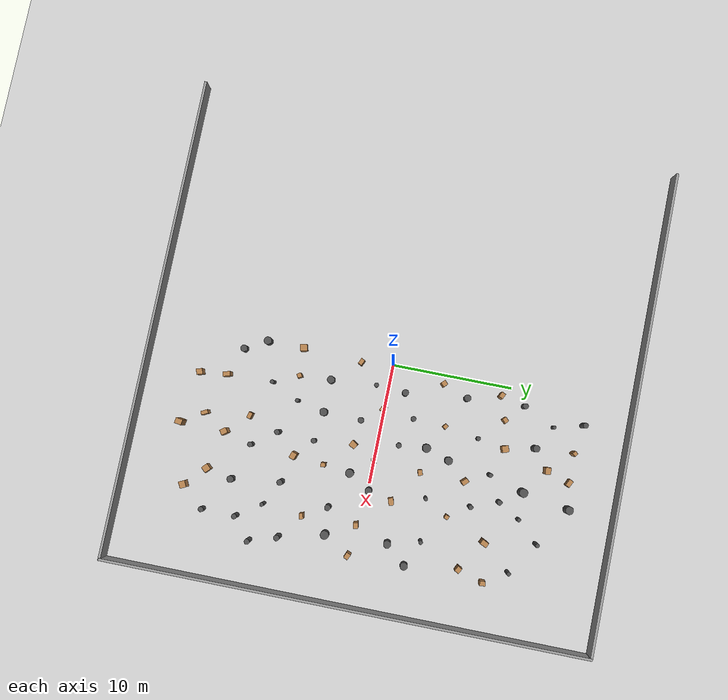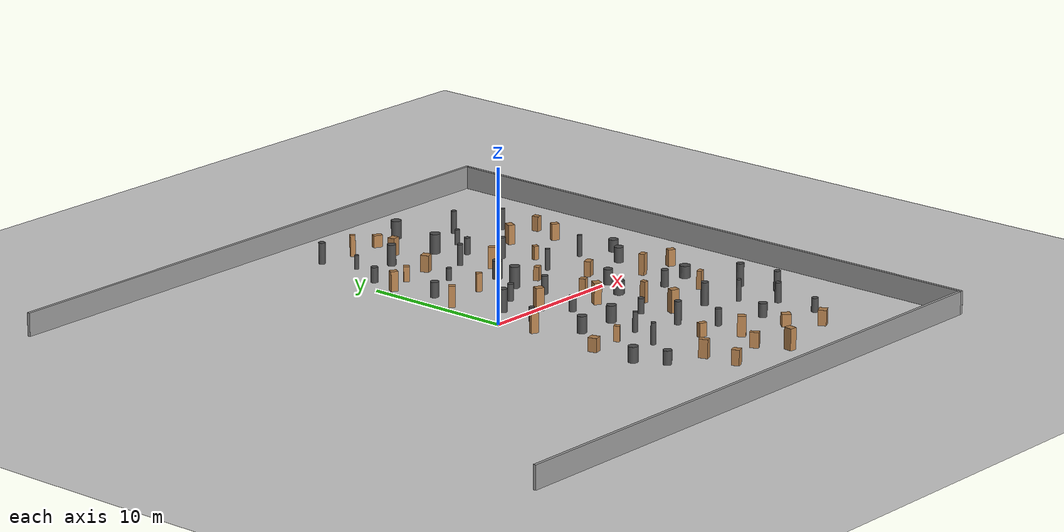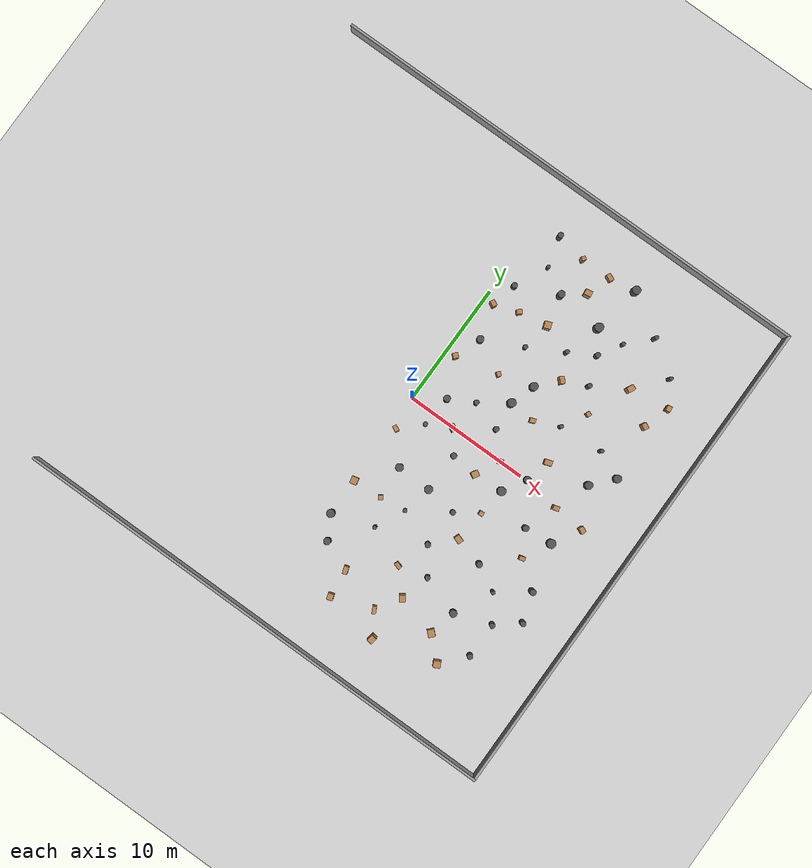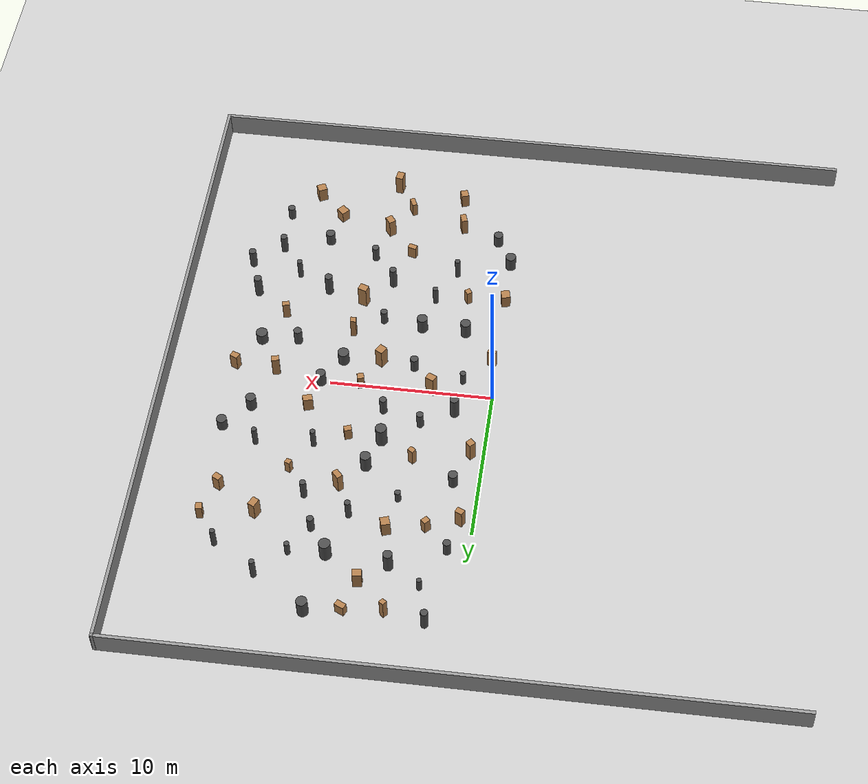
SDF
<sdf version="1.6">
 <world name="default">
  <model name="ground_plane">
   <static>1</static>
   <link name="link">
    <collision name="collision">
     <geometry><plane><normal>0 0 1</normal><size>80 80</size></plane></geometry>
     <surface><friction><ode><mu>0.5</mu><mu2>0.5</mu2></ode></friction></surface>
    </collision>
    <visual name="visual">
     <cast_shadows>0</cast_shadows>
     <geometry><plane><normal>0 0 1</normal><size>80 80</size></plane></geometry>
     <material>
      <script><uri>file://media/materials/scripts/gazebo.material</uri><name>Gazebo/Grey</name></script>
     </material>
    </visual>
   </link>
  </model>
  <model name="wall_north">
   <static>1</static>
   <link name="link">
    <collision name="collision"><geometry><box><size>40.4 0.2 1.5</size></box></geometry></collision>
    <visual name="visual">
     <geometry><box><size>40.4 0.2 1.5</size></box></geometry>
     <material>
      <script><uri>file://media/materials/scripts/gazebo.material</uri><name>Gazebo/Grey</name></script>
     </material>
    </visual>
   </link>
   <pose>0 20.1 0.75 0 0 0</pose>
  </model>
  <model name="wall_south">
   <static>1</static>
   <link name="link">
    <collision name="collision"><geometry><box><size>40.4 0.2 1.5</size></box></geometry></collision>
    <visual name="visual">
     <geometry><box><size>40.4 0.2 1.5</size></box></geometry>
     <material>
      <script><uri>file://media/materials/scripts/gazebo.material</uri><name>Gazebo/Grey</name></script>
     </material>
    </visual>
   </link>
   <pose>0 -20.1 0.75 0 0 0</pose>
  </model>
  <model name="wall_east">
   <static>1</static>
   <link name="link">
    <collision name="collision"><geometry><box><size>0.2 40.4 1.5</size></box></geometry></collision>
    <visual name="visual">
     <geometry><box><size>0.2 40.4 1.5</size></box></geometry>
     <material>
      <script><uri>file://media/materials/scripts/gazebo.material</uri><name>Gazebo/Grey</name></script>
     </material>
    </visual>
   </link>
   <pose>20.1 0 0.75 0 0 0</pose>
  </model>
  <model name="obs_006">
   <static>1</static>
   <link name="link">
    <collision name="collision">
     <geometry><cylinder><radius>0.16</radius><length>1.4</length></cylinder></geometry>
    </collision>
    <visual name="visual">
     <geometry><cylinder><radius>0.16</radius><length>1.4</length></cylinder></geometry>
     <material>
      <script><uri>file://media/materials/scripts/gazebo.material</uri><name>Gazebo/DarkGrey</name></script>
     </material>
    </visual>
   </link>
   <pose>10.24 4.73 0.70 0 0 0</pose>
  </model>
  <model name="obs_007">
   <static>1</static>
   <link name="link">
    <collision name="collision"><geometry><box><size>0.31 0.45 1.2</size></box></geometry></collision>
    <visual name="visual">
     <geometry><box><size>0.31 0.45 1.2</size></box></geometry>
     <material>
      <script><uri>file://media/materials/scripts/gazebo.material</uri><name>Gazebo/Wood</name></script>
     </material>
    </visual>
   </link>
   <pose>13.59 -4.91 0.60 0 0 -1.3</pose>
  </model>
  <model name="obs_009">
   <static>1</static>
   <link name="link">
    <collision name="collision"><geometry><box><size>0.5 0.46 1.0</size></box></geometry></collision>
    <visual name="visual">
     <geometry><box><size>0.5 0.46 1.0</size></box></geometry>
     <material>
      <script><uri>file://media/materials/scripts/gazebo.material</uri><name>Gazebo/Wood</name></script>
     </material>
    </visual>
   </link>
   <pose>3.71 -15.54 0.50 0 0 -1.25</pose>
  </model>
  <model name="obs_011">
   <static>1</static>
   <link name="link">
    <collision name="collision">
     <geometry><cylinder><radius>0.21</radius><length>1.1</length></cylinder></geometry>
    </collision>
    <visual name="visual">
     <geometry><cylinder><radius>0.21</radius><length>1.1</length></cylinder></geometry>
     <material>
      <script><uri>file://media/materials/scripts/gazebo.material</uri><name>Gazebo/DarkGrey</name></script>
     </material>
    </visual>
   </link>
   <pose>4.09 2.51 0.55 0 0 0</pose>
  </model>
  <model name="obs_013">
   <static>1</static>
   <link name="link">
    <collision name="collision"><geometry><box><size>0.54 0.57 0.8</size></box></geometry></collision>
    <visual name="visual">
     <geometry><box><size>0.54 0.57 0.8</size></box></geometry>
     <material>
      <script><uri>file://media/materials/scripts/gazebo.material</uri><name>Gazebo/Wood</name></script>
     </material>
    </visual>
   </link>
   <pose>11.36 -13.36 0.40 0 0 -2.31</pose>
  </model>
  <model name="obs_017">
   <static>1</static>
   <link name="link">
    <collision name="collision">
     <geometry><cylinder><radius>0.32</radius><length>1.2</length></cylinder></geometry>
    </collision>
    <visual name="visual">
     <geometry><cylinder><radius>0.32</radius><length>1.2</length></cylinder></geometry>
     <material>
      <script><uri>file://media/materials/scripts/gazebo.material</uri><name>Gazebo/DarkGrey</name></script>
     </material>
    </visual>
   </link>
   <pose>6.87 5.98 0.60 0 0 0</pose>
  </model>
  <model name="obs_018">
   <static>1</static>
   <link name="link">
    <collision name="collision">
     <geometry><cylinder><radius>0.16</radius><length>1.4</length></cylinder></geometry>
    </collision>
    <visual name="visual">
     <geometry><cylinder><radius>0.16</radius><length>1.4</length></cylinder></geometry>
     <material>
      <script><uri>file://media/materials/scripts/gazebo.material</uri><name>Gazebo/DarkGrey</name></script>
     </material>
    </visual>
   </link>
   <pose>13.74 5.00 0.70 0 0 0</pose>
  </model>
  <model name="obs_020">
   <static>1</static>
   <link name="link">
    <collision name="collision"><geometry><box><size>0.54 0.55 1.1</size></box></geometry></collision>
    <visual name="visual">
     <geometry><box><size>0.54 0.55 1.1</size></box></geometry>
     <material>
      <script><uri>file://media/materials/scripts/gazebo.material</uri><name>Gazebo/Wood</name></script>
     </material>
    </visual>
   </link>
   <pose>5.03 10.34 0.55 0 0 -2.81</pose>
  </model>
  <model name="obs_021">
   <static>1</static>
   <link name="link">
    <collision name="collision">
     <geometry><cylinder><radius>0.33</radius><length>1.2</length></cylinder></geometry>
    </collision>
    <visual name="visual">
     <geometry><cylinder><radius>0.33</radius><length>1.2</length></cylinder></geometry>
     <material>
      <script><uri>file://media/materials/scripts/gazebo.material</uri><name>Gazebo/DarkGrey</name></script>
     </material>
    </visual>
   </link>
   <pose>8.89 16.34 0.60 0 0 0</pose>
  </model>
  <model name="obs_026">
   <static>1</static>
   <link name="link">
    <collision name="collision">
     <geometry><cylinder><radius>0.15</radius><length>0.9</length></cylinder></geometry>
    </collision>
    <visual name="visual">
     <geometry><cylinder><radius>0.15</radius><length>0.9</length></cylinder></geometry>
     <material>
      <script><uri>file://media/materials/scripts/gazebo.material</uri><name>Gazebo/DarkGrey</name></script>
     </material>
    </visual>
   </link>
   <pose>2.52 13.98 0.45 0 0 0</pose>
  </model>
  <model name="obs_027">
   <static>1</static>
   <link name="link">
    <collision name="collision">
     <geometry><cylinder><radius>0.23</radius><length>1.0</length></cylinder></geometry>
    </collision>
    <visual name="visual">
     <geometry><cylinder><radius>0.23</radius><length>1.0</length></cylinder></geometry>
     <material>
      <script><uri>file://media/materials/scripts/gazebo.material</uri><name>Gazebo/DarkGrey</name></script>
     </material>
    </visual>
   </link>
   <pose>1.27 11.33 0.50 0 0 0</pose>
  </model>
  <model name="obs_028">
   <static>1</static>
   <link name="link">
    <collision name="collision"><geometry><box><size>0.54 0.57 0.9</size></box></geometry></collision>
    <visual name="visual">
     <geometry><box><size>0.54 0.57 0.9</size></box></geometry>
     <material>
      <script><uri>file://media/materials/scripts/gazebo.material</uri><name>Gazebo/Wood</name></script>
     </material>
    </visual>
   </link>
   <pose>0.09 -7.54 0.45 0 0 0.22</pose>
  </model>
  <model name="obs_031">
   <static>1</static>
   <link name="link">
    <collision name="collision">
     <geometry><cylinder><radius>0.17</radius><length>1.5</length></cylinder></geometry>
    </collision>
    <visual name="visual">
     <geometry><cylinder><radius>0.17</radius><length>1.5</length></cylinder></geometry>
     <material>
      <script><uri>file://media/materials/scripts/gazebo.material</uri><name>Gazebo/DarkGrey</name></script>
     </material>
    </visual>
   </link>
   <pose>12.13 14.25 0.75 0 0 0</pose>
  </model>
  <model name="obs_032">
   <static>1</static>
   <link name="link">
    <collision name="collision"><geometry><box><size>0.42 0.42 1.4</size></box></geometry></collision>
    <visual name="visual">
     <geometry><box><size>0.42 0.42 1.4</size></box></geometry>
     <material>
      <script><uri>file://media/materials/scripts/gazebo.material</uri><name>Gazebo/Wood</name></script>
     </material>
    </visual>
   </link>
   <pose>0.77 4.42 0.70 0 0 0.78</pose>
  </model>
  <model name="obs_033">
   <static>1</static>
   <link name="link">
    <collision name="collision"><geometry><box><size>0.4 0.41 1.0</size></box></geometry></collision>
    <visual name="visual">
     <geometry><box><size>0.4 0.41 1.0</size></box></geometry>
     <material>
      <script><uri>file://media/materials/scripts/gazebo.material</uri><name>Gazebo/Wood</name></script>
     </material>
    </visual>
   </link>
   <pose>8.11 -0.01 0.50 0 0 -1.3</pose>
  </model>
  <model name="obs_034">
   <static>1</static>
   <link name="link">
    <collision name="collision">
     <geometry><cylinder><radius>0.16</radius><length>1.4</length></cylinder></geometry>
    </collision>
    <visual name="visual">
     <geometry><cylinder><radius>0.16</radius><length>1.4</length></cylinder></geometry>
     <material>
      <script><uri>file://media/materials/scripts/gazebo.material</uri><name>Gazebo/DarkGrey</name></script>
     </material>
    </visual>
   </link>
   <pose>14.80 12.41 0.70 0 0 0</pose>
  </model>
  <model name="obs_035">
   <static>1</static>
   <link name="link">
    <collision name="collision"><geometry><box><size>0.4 0.49 1.1</size></box></geometry></collision>
    <visual name="visual">
     <geometry><box><size>0.4 0.49 1.1</size></box></geometry>
     <material>
      <script><uri>file://media/materials/scripts/gazebo.material</uri><name>Gazebo/Wood</name></script>
     </material>
    </visual>
   </link>
   <pose>15.31 8.42 0.55 0 0 -2.05</pose>
  </model>
  <model name="obs_038">
   <static>1</static>
   <link name="link">
    <collision name="collision"><geometry><box><size>0.34 0.33 0.9</size></box></geometry></collision>
    <visual name="visual">
     <geometry><box><size>0.34 0.33 0.9</size></box></geometry>
     <material>
      <script><uri>file://media/materials/scripts/gazebo.material</uri><name>Gazebo/Wood</name></script>
     </material>
    </visual>
   </link>
   <pose>11.39 6.71 0.45 0 0 2.77</pose>
  </model>
  <model name="obs_040">
   <static>1</static>
   <link name="link">
    <collision name="collision">
     <geometry><cylinder><radius>0.16</radius><length>1.3</length></cylinder></geometry>
    </collision>
    <visual name="visual">
     <geometry><cylinder><radius>0.16</radius><length>1.3</length></cylinder></geometry>
     <material>
      <script><uri>file://media/materials/scripts/gazebo.material</uri><name>Gazebo/DarkGrey</name></script>
     </material>
    </visual>
   </link>
   <pose>4.47 -7.13 0.65 0 0 0</pose>
  </model>
  <model name="obs_043">
   <static>1</static>
   <link name="link">
    <collision name="collision">
     <geometry><cylinder><radius>0.35</radius><length>1.3</length></cylinder></geometry>
    </collision>
    <visual name="visual">
     <geometry><cylinder><radius>0.35</radius><length>1.3</length></cylinder></geometry>
     <material>
      <script><uri>file://media/materials/scripts/gazebo.material</uri><name>Gazebo/DarkGrey</name></script>
     </material>
    </visual>
   </link>
   <pose>8.23 12.42 0.65 0 0 0</pose>
  </model>
  <model name="obs_045">
   <static>1</static>
   <link name="link">
    <collision name="collision">
     <geometry><cylinder><radius>0.24</radius><length>1.0</length></cylinder></geometry>
    </collision>
    <visual name="visual">
     <geometry><cylinder><radius>0.24</radius><length>1.0</length></cylinder></geometry>
     <material>
      <script><uri>file://media/materials/scripts/gazebo.material</uri><name>Gazebo/DarkGrey</name></script>
     </material>
    </visual>
   </link>
   <pose>5.04 -1.71 0.50 0 0 0</pose>
  </model>
  <model name="obs_047">
   <static>1</static>
   <link name="link">
    <collision name="collision"><geometry><box><size>0.55 0.45 1.2</size></box></geometry></collision>
    <visual name="visual">
     <geometry><box><size>0.55 0.45 1.2</size></box></geometry>
     <material>
      <script><uri>file://media/materials/scripts/gazebo.material</uri><name>Gazebo/Wood</name></script>
     </material>
    </visual>
   </link>
   <pose>6.09 14.07 0.60 0 0 -3.03</pose>
  </model>
  <model name="obs_049">
   <static>1</static>
   <link name="link">
    <collision name="collision"><geometry><box><size>0.47 0.37 1.4</size></box></geometry></collision>
    <visual name="visual">
     <geometry><box><size>0.47 0.37 1.4</size></box></geometry>
     <material>
      <script><uri>file://media/materials/scripts/gazebo.material</uri><name>Gazebo/Wood</name></script>
     </material>
    </visual>
   </link>
   <pose>13.44 -0.42 0.70 0 0 0.25</pose>
  </model>
  <model name="obs_050">
   <static>1</static>
   <link name="link">
    <collision name="collision">
     <geometry><cylinder><radius>0.28</radius><length>0.9</length></cylinder></geometry>
    </collision>
    <visual name="visual">
     <geometry><cylinder><radius>0.28</radius><length>0.9</length></cylinder></geometry>
     <material>
      <script><uri>file://media/materials/scripts/gazebo.material</uri><name>Gazebo/DarkGrey</name></script>
     </material>
    </visual>
   </link>
   <pose>11.83 -11.22 0.45 0 0 0</pose>
  </model>
  <model name="obs_051">
   <static>1</static>
   <link name="link">
    <collision name="collision">
     <geometry><cylinder><radius>0.24</radius><length>1.5</length></cylinder></geometry>
    </collision>
    <visual name="visual">
     <geometry><cylinder><radius>0.24</radius><length>1.5</length></cylinder></geometry>
     <material>
      <script><uri>file://media/materials/scripts/gazebo.material</uri><name>Gazebo/DarkGrey</name></script>
     </material>
    </visual>
   </link>
   <pose>15.64 -6.47 0.75 0 0 0</pose>
  </model>
  <model name="obs_053">
   <static>1</static>
   <link name="link">
    <collision name="collision">
     <geometry><cylinder><radius>0.28</radius><length>1.4</length></cylinder></geometry>
    </collision>
    <visual name="visual">
     <geometry><cylinder><radius>0.28</radius><length>1.4</length></cylinder></geometry>
     <material>
      <script><uri>file://media/materials/scripts/gazebo.material</uri><name>Gazebo/DarkGrey</name></script>
     </material>
    </visual>
   </link>
   <pose>4.50 12.78 0.70 0 0 0</pose>
  </model>
  <model name="obs_054">
   <static>1</static>
   <link name="link">
    <collision name="collision"><geometry><box><size>0.43 0.58 1.3</size></box></geometry></collision>
    <visual name="visual">
     <geometry><box><size>0.43 0.58 1.3</size></box></geometry>
     <material>
      <script><uri>file://media/materials/scripts/gazebo.material</uri><name>Gazebo/Wood</name></script>
     </material>
    </visual>
   </link>
   <pose>12.82 10.07 0.65 0 0 -0.43</pose>
  </model>
  <model name="obs_055">
   <static>1</static>
   <link name="link">
    <collision name="collision">
     <geometry><cylinder><radius>0.35</radius><length>0.8</length></cylinder></geometry>
    </collision>
    <visual name="visual">
     <geometry><cylinder><radius>0.35</radius><length>0.8</length></cylinder></geometry>
     <material>
      <script><uri>file://media/materials/scripts/gazebo.material</uri><name>Gazebo/DarkGrey</name></script>
     </material>
    </visual>
   </link>
   <pose>14.75 -2.77 0.40 0 0 0</pose>
  </model>
  <model name="obs_056">
   <static>1</static>
   <link name="link">
    <collision name="collision">
     <geometry><cylinder><radius>0.24</radius><length>1.5</length></cylinder></geometry>
    </collision>
    <visual name="visual">
     <geometry><cylinder><radius>0.24</radius><length>1.5</length></cylinder></geometry>
     <material>
      <script><uri>file://media/materials/scripts/gazebo.material</uri><name>Gazebo/DarkGrey</name></script>
     </material>
    </visual>
   </link>
   <pose>11.25 -7.13 0.75 0 0 0</pose>
  </model>
  <model name="obs_060">
   <static>1</static>
   <link name="link">
    <collision name="collision"><geometry><box><size>0.53 0.33 0.9</size></box></geometry></collision>
    <visual name="visual">
     <geometry><box><size>0.53 0.33 0.9</size></box></geometry>
     <material>
      <script><uri>file://media/materials/scripts/gazebo.material</uri><name>Gazebo/Wood</name></script>
     </material>
    </visual>
   </link>
   <pose>6.44 -10.74 0.45 0 0 -0.26</pose>
  </model>
  <model name="obs_061">
   <static>1</static>
   <link name="link">
    <collision name="collision">
     <geometry><cylinder><radius>0.18</radius><length>0.9</length></cylinder></geometry>
    </collision>
    <visual name="visual">
     <geometry><cylinder><radius>0.18</radius><length>0.9</length></cylinder></geometry>
     <material>
      <script><uri>file://media/materials/scripts/gazebo.material</uri><name>Gazebo/DarkGrey</name></script>
     </material>
    </visual>
   </link>
   <pose>1.94 -1.03 0.45 0 0 0</pose>
  </model>
  <model name="obs_064">
   <static>1</static>
   <link name="link">
    <collision name="collision"><geometry><box><size>0.46 0.56 1.5</size></box></geometry></collision>
    <visual name="visual">
     <geometry><box><size>0.46 0.56 1.5</size></box></geometry>
     <material>
      <script><uri>file://media/materials/scripts/gazebo.material</uri><name>Gazebo/Wood</name></script>
     </material>
    </visual>
   </link>
   <pose>8.93 -6.52 0.75 0 0 -1.9</pose>
  </model>
  <model name="obs_065">
   <static>1</static>
   <link name="link">
    <collision name="collision"><geometry><box><size>0.52 0.56 1.0</size></box></geometry></collision>
    <visual name="visual">
     <geometry><box><size>0.52 0.56 1.0</size></box></geometry>
     <material>
      <script><uri>file://media/materials/scripts/gazebo.material</uri><name>Gazebo/Wood</name></script>
     </material>
    </visual>
   </link>
   <pose>13.01 -14.94 0.50 0 0 -1.1</pose>
  </model>
  <model name="obs_066">
   <static>1</static>
   <link name="link">
    <collision name="collision">
     <geometry><cylinder><radius>0.32</radius><length>1.1</length></cylinder></geometry>
    </collision>
    <visual name="visual">
     <geometry><cylinder><radius>0.32</radius><length>1.1</length></cylinder></geometry>
     <material>
      <script><uri>file://media/materials/scripts/gazebo.material</uri><name>Gazebo/DarkGrey</name></script>
     </material>
    </visual>
   </link>
   <pose>4.98 -4.84 0.55 0 0 0</pose>
  </model>
  <model name="obs_067">
   <static>1</static>
   <link name="link">
    <collision name="collision"><geometry><box><size>0.37 0.59 1.2</size></box></geometry></collision>
    <visual name="visual">
     <geometry><box><size>0.37 0.59 1.2</size></box></geometry>
     <material>
      <script><uri>file://media/materials/scripts/gazebo.material</uri><name>Gazebo/Wood</name></script>
     </material>
    </visual>
   </link>
   <pose>3.47 -13.27 0.60 0 0 -2.82</pose>
  </model>
  <model name="obs_068">
   <static>1</static>
   <link name="link">
    <collision name="collision">
     <geometry><cylinder><radius>0.28</radius><length>0.9</length></cylinder></geometry>
    </collision>
    <visual name="visual">
     <geometry><cylinder><radius>0.28</radius><length>0.9</length></cylinder></geometry>
     <material>
      <script><uri>file://media/materials/scripts/gazebo.material</uri><name>Gazebo/DarkGrey</name></script>
     </material>
    </visual>
   </link>
   <pose>1.11 -12.36 0.45 0 0 0</pose>
  </model>
  <model name="obs_073">
   <static>1</static>
   <link name="link">
    <collision name="collision"><geometry><box><size>0.58 0.31 1.0</size></box></geometry></collision>
    <visual name="visual">
     <geometry><box><size>0.58 0.31 1.0</size></box></geometry>
     <material>
      <script><uri>file://media/materials/scripts/gazebo.material</uri><name>Gazebo/Wood</name></script>
     </material>
    </visual>
   </link>
   <pose>6.91 -14.42 0.50 0 0 2.05</pose>
  </model>
  <model name="obs_074">
   <static>1</static>
   <link name="link">
    <collision name="collision">
     <geometry><cylinder><radius>0.31</radius><length>1.0</length></cylinder></geometry>
    </collision>
    <visual name="visual">
     <geometry><cylinder><radius>0.31</radius><length>1.0</length></cylinder></geometry>
     <material>
      <script><uri>file://media/materials/scripts/gazebo.material</uri><name>Gazebo/DarkGrey</name></script>
     </material>
    </visual>
   </link>
   <pose>14.47 2.38 0.50 0 0 0</pose>
  </model>
  <model name="obs_075">
   <static>1</static>
   <link name="link">
    <collision name="collision">
     <geometry><cylinder><radius>0.34</radius><length>0.9</length></cylinder></geometry>
    </collision>
    <visual name="visual">
     <geometry><cylinder><radius>0.34</radius><length>0.9</length></cylinder></geometry>
     <material>
      <script><uri>file://media/materials/scripts/gazebo.material</uri><name>Gazebo/DarkGrey</name></script>
     </material>
    </visual>
   </link>
   <pose>9.46 -1.76 0.45 0 0 0</pose>
  </model>
  <model name="obs_076">
   <static>1</static>
   <link name="link">
    <collision name="collision">
     <geometry><cylinder><radius>0.16</radius><length>1.0</length></cylinder></geometry>
    </collision>
    <visual name="visual">
     <geometry><cylinder><radius>0.16</radius><length>1.0</length></cylinder></geometry>
     <material>
      <script><uri>file://media/materials/scripts/gazebo.material</uri><name>Gazebo/DarkGrey</name></script>
     </material>
    </visual>
   </link>
   <pose>10.45 12.50 0.50 0 0 0</pose>
  </model>
  <model name="obs_079">
   <static>1</static>
   <link name="link">
    <collision name="collision">
     <geometry><cylinder><radius>0.22</radius><length>0.9</length></cylinder></geometry>
    </collision>
    <visual name="visual">
     <geometry><cylinder><radius>0.22</radius><length>0.9</length></cylinder></geometry>
     <material>
      <script><uri>file://media/materials/scripts/gazebo.material</uri><name>Gazebo/DarkGrey</name></script>
     </material>
    </visual>
   </link>
   <pose>14.68 -13.05 0.45 0 0 0</pose>
  </model>
  <model name="obs_080">
   <static>1</static>
   <link name="link">
    <collision name="collision">
     <geometry><cylinder><radius>0.21</radius><length>1.3</length></cylinder></geometry>
    </collision>
    <visual name="visual">
     <geometry><cylinder><radius>0.21</radius><length>1.3</length></cylinder></geometry>
     <material>
      <script><uri>file://media/materials/scripts/gazebo.material</uri><name>Gazebo/DarkGrey</name></script>
     </material>
    </visual>
   </link>
   <pose>14.66 -10.22 0.65 0 0 0</pose>
  </model>
  <model name="obs_082">
   <static>1</static>
   <link name="link">
    <collision name="collision">
     <geometry><cylinder><radius>0.31</radius><length>1.1</length></cylinder></geometry>
    </collision>
    <visual name="visual">
     <geometry><cylinder><radius>0.31</radius><length>1.1</length></cylinder></geometry>
     <material>
      <script><uri>file://media/materials/scripts/gazebo.material</uri><name>Gazebo/DarkGrey</name></script>
     </material>
    </visual>
   </link>
   <pose>2.26 -4.78 0.55 0 0 0</pose>
  </model>
  <model name="obs_084">
   <static>1</static>
   <link name="link">
    <collision name="collision">
     <geometry><cylinder><radius>0.34</radius><length>1.4</length></cylinder></geometry>
    </collision>
    <visual name="visual">
     <geometry><cylinder><radius>0.34</radius><length>1.4</length></cylinder></geometry>
     <material>
      <script><uri>file://media/materials/scripts/gazebo.material</uri><name>Gazebo/DarkGrey</name></script>
     </material>
    </visual>
   </link>
   <pose>6.22 4.01 0.70 0 0 0</pose>
  </model>
  <model name="obs_089">
   <static>1</static>
   <link name="link">
    <collision name="collision"><geometry><box><size>0.54 0.45 1.3</size></box></geometry></collision>
    <visual name="visual">
     <geometry><box><size>0.54 0.45 1.3</size></box></geometry>
     <material>
      <script><uri>file://media/materials/scripts/gazebo.material</uri><name>Gazebo/Wood</name></script>
     </material>
    </visual>
   </link>
   <pose>8.11 -12.49 0.65 0 0 -0.93</pose>
  </model>
  <model name="obs_093">
   <static>1</static>
   <link name="link">
    <collision name="collision"><geometry><box><size>0.48 0.37 1.3</size></box></geometry></collision>
    <visual name="visual">
     <geometry><box><size>0.48 0.37 1.3</size></box></geometry>
     <material>
      <script><uri>file://media/materials/scripts/gazebo.material</uri><name>Gazebo/Wood</name></script>
     </material>
    </visual>
   </link>
   <pose>0.78 9.26 0.65 0 0 -0.47</pose>
  </model>
  <model name="obs_094">
   <static>1</static>
   <link name="link">
    <collision name="collision"><geometry><box><size>0.55 0.44 1.5</size></box></geometry></collision>
    <visual name="visual">
     <geometry><box><size>0.55 0.44 1.5</size></box></geometry>
     <material>
      <script><uri>file://media/materials/scripts/gazebo.material</uri><name>Gazebo/Wood</name></script>
     </material>
    </visual>
   </link>
   <pose>3.76 -0.07 0.75 0 0 -0.44</pose>
  </model>
  <model name="obs_095">
   <static>1</static>
   <link name="link">
    <collision name="collision">
     <geometry><cylinder><radius>0.18</radius><length>0.8</length></cylinder></geometry>
    </collision>
    <visual name="visual">
     <geometry><cylinder><radius>0.18</radius><length>0.8</length></cylinder></geometry>
     <material>
      <script><uri>file://media/materials/scripts/gazebo.material</uri><name>Gazebo/DarkGrey</name></script>
     </material>
    </visual>
   </link>
   <pose>4.63 8.06 0.40 0 0 0</pose>
  </model>
  <model name="obs_096">
   <static>1</static>
   <link name="link">
    <collision name="collision"><geometry><box><size>0.57 0.37 1.4</size></box></geometry></collision>
    <visual name="visual">
     <geometry><box><size>0.57 0.37 1.4</size></box></geometry>
     <material>
      <script><uri>file://media/materials/scripts/gazebo.material</uri><name>Gazebo/Wood</name></script>
     </material>
    </visual>
   </link>
   <pose>8.27 7.59 0.70 0 0 2.32</pose>
  </model>
  <model name="obs_099">
   <static>1</static>
   <link name="link">
    <collision name="collision"><geometry><box><size>0.38 0.32 1.2</size></box></geometry></collision>
    <visual name="visual">
     <geometry><box><size>0.38 0.32 1.2</size></box></geometry>
     <material>
      <script><uri>file://media/materials/scripts/gazebo.material</uri><name>Gazebo/Wood</name></script>
     </material>
    </visual>
   </link>
   <pose>4.19 5.20 0.60 0 0 2.5</pose>
  </model>
  <model name="obs_101">
   <static>1</static>
   <link name="link">
    <collision name="collision"><geometry><box><size>0.38 0.45 1.0</size></box></geometry></collision>
    <visual name="visual">
     <geometry><box><size>0.38 0.45 1.0</size></box></geometry>
     <material>
      <script><uri>file://media/materials/scripts/gazebo.material</uri><name>Gazebo/Wood</name></script>
     </material>
    </visual>
   </link>
   <pose>16.01 10.54 0.50 0 0 0.13</pose>
  </model>
  <model name="obs_102">
   <static>1</static>
   <link name="link">
    <collision name="collision"><geometry><box><size>0.5 0.39 1.1</size></box></geometry></collision>
    <visual name="visual">
     <geometry><box><size>0.5 0.39 1.1</size></box></geometry>
     <material>
      <script><uri>file://media/materials/scripts/gazebo.material</uri><name>Gazebo/Wood</name></script>
     </material>
    </visual>
   </link>
   <pose>16.00 -0.61 0.55 0 0 -0.42</pose>
  </model>
  <model name="obs_103">
   <static>1</static>
   <link name="link">
    <collision name="collision">
     <geometry><cylinder><radius>0.32</radius><length>1.0</length></cylinder></geometry>
    </collision>
    <visual name="visual">
     <geometry><cylinder><radius>0.32</radius><length>1.0</length></cylinder></geometry>
     <material>
      <script><uri>file://media/materials/scripts/gazebo.material</uri><name>Gazebo/DarkGrey</name></script>
     </material>
    </visual>
   </link>
   <pose>0.11 -10.54 0.50 0 0 0</pose>
  </model>
  <model name="obs_107">
   <static>1</static>
   <link name="link">
    <collision name="collision">
     <geometry><cylinder><radius>0.16</radius><length>1.4</length></cylinder></geometry>
    </collision>
    <visual name="visual">
     <geometry><cylinder><radius>0.16</radius><length>1.4</length></cylinder></geometry>
     <material>
      <script><uri>file://media/materials/scripts/gazebo.material</uri><name>Gazebo/DarkGrey</name></script>
     </material>
    </visual>
   </link>
   <pose>3.37 -9.44 0.70 0 0 0</pose>
  </model>
  <model name="obs_109">
   <static>1</static>
   <link name="link">
    <collision name="collision">
     <geometry><cylinder><radius>0.29</radius><length>1.0</length></cylinder></geometry>
    </collision>
    <visual name="visual">
     <geometry><cylinder><radius>0.29</radius><length>1.0</length></cylinder></geometry>
     <material>
      <script><uri>file://media/materials/scripts/gazebo.material</uri><name>Gazebo/DarkGrey</name></script>
     </material>
    </visual>
   </link>
   <pose>10.56 0.04 0.50 0 0 0</pose>
  </model>
  <model name="obs_113">
   <static>1</static>
   <link name="link">
    <collision name="collision">
     <geometry><cylinder><radius>0.21</radius><length>1.1</length></cylinder></geometry>
    </collision>
    <visual name="visual">
     <geometry><cylinder><radius>0.21</radius><length>1.1</length></cylinder></geometry>
     <material>
      <script><uri>file://media/materials/scripts/gazebo.material</uri><name>Gazebo/DarkGrey</name></script>
     </material>
    </visual>
   </link>
   <pose>8.74 -10.19 0.55 0 0 0</pose>
  </model>
  <model name="obs_119">
   <static>1</static>
   <link name="link">
    <collision name="collision">
     <geometry><cylinder><radius>0.25</radius><length>1.1</length></cylinder></geometry>
    </collision>
    <visual name="visual">
     <geometry><cylinder><radius>0.25</radius><length>1.1</length></cylinder></geometry>
     <material>
      <script><uri>file://media/materials/scripts/gazebo.material</uri><name>Gazebo/DarkGrey</name></script>
     </material>
    </visual>
   </link>
   <pose>12.51 -2.95 0.55 0 0 0</pose>
  </model>
  <model name="obs_120">
   <static>1</static>
   <link name="link">
    <collision name="collision">
     <geometry><cylinder><radius>0.18</radius><length>1.4</length></cylinder></geometry>
    </collision>
    <visual name="visual">
     <geometry><cylinder><radius>0.18</radius><length>1.4</length></cylinder></geometry>
     <material>
      <script><uri>file://media/materials/scripts/gazebo.material</uri><name>Gazebo/DarkGrey</name></script>
     </material>
    </visual>
   </link>
   <pose>7.35 9.52 0.70 0 0 0</pose>
  </model>
  <model name="obs_121">
   <static>1</static>
   <link name="link">
    <collision name="collision">
     <geometry><cylinder><radius>0.22</radius><length>1.5</length></cylinder></geometry>
    </collision>
    <visual name="visual">
     <geometry><cylinder><radius>0.22</radius><length>1.5</length></cylinder></geometry>
     <material>
      <script><uri>file://media/materials/scripts/gazebo.material</uri><name>Gazebo/DarkGrey</name></script>
     </material>
    </visual>
   </link>
   <pose>7.31 -8.18 0.75 0 0 0</pose>
  </model>
  <model name="obs_122">
   <static>1</static>
   <link name="link">
    <collision name="collision">
     <geometry><cylinder><radius>0.31</radius><length>0.8</length></cylinder></geometry>
    </collision>
    <visual name="visual">
     <geometry><cylinder><radius>0.31</radius><length>0.8</length></cylinder></geometry>
     <material>
      <script><uri>file://media/materials/scripts/gazebo.material</uri><name>Gazebo/DarkGrey</name></script>
     </material>
    </visual>
   </link>
   <pose>15.95 4.05 0.40 0 0 0</pose>
  </model>
  <model name="obs_124">
   <static>1</static>
   <link name="link">
    <collision name="collision">
     <geometry><cylinder><radius>0.21</radius><length>1.1</length></cylinder></geometry>
    </collision>
    <visual name="visual">
     <geometry><cylinder><radius>0.21</radius><length>1.1</length></cylinder></geometry>
     <material>
      <script><uri>file://media/materials/scripts/gazebo.material</uri><name>Gazebo/DarkGrey</name></script>
     </material>
    </visual>
   </link>
   <pose>9.38 10.69 0.55 0 0 0</pose>
  </model>
  <model name="obs_126">
   <static>1</static>
   <link name="link">
    <collision name="collision">
     <geometry><cylinder><radius>0.22</radius><length>1.4</length></cylinder></geometry>
    </collision>
    <visual name="visual">
     <geometry><cylinder><radius>0.22</radius><length>1.4</length></cylinder></geometry>
     <material>
      <script><uri>file://media/materials/scripts/gazebo.material</uri><name>Gazebo/DarkGrey</name></script>
     </material>
    </visual>
   </link>
   <pose>1.88 16.36 0.70 0 0 0</pose>
  </model>
  <model name="obs_127">
   <static>1</static>
   <link name="link">
    <collision name="collision">
     <geometry><cylinder><radius>0.22</radius><length>1.2</length></cylinder></geometry>
    </collision>
    <visual name="visual">
     <geometry><cylinder><radius>0.22</radius><length>1.2</length></cylinder></geometry>
     <material>
      <script><uri>file://media/materials/scripts/gazebo.material</uri><name>Gazebo/DarkGrey</name></script>
     </material>
    </visual>
   </link>
   <pose>6.45 1.75 0.60 0 0 0</pose>
  </model>
  <model name="obs_128">
   <static>1</static>
   <link name="link">
    <collision name="collision">
     <geometry><cylinder><radius>0.28</radius><length>1.0</length></cylinder></geometry>
    </collision>
    <visual name="visual">
     <geometry><cylinder><radius>0.28</radius><length>1.0</length></cylinder></geometry>
     <material>
      <script><uri>file://media/materials/scripts/gazebo.material</uri><name>Gazebo/DarkGrey</name></script>
     </material>
    </visual>
   </link>
   <pose>1.55 6.54 0.50 0 0 0</pose>
  </model>
  <model name="obs_130">
   <static>1</static>
   <link name="link">
    <collision name="collision">
     <geometry><cylinder><radius>0.21</radius><length>1.0</length></cylinder></geometry>
    </collision>
    <visual name="visual">
     <geometry><cylinder><radius>0.21</radius><length>1.0</length></cylinder></geometry>
     <material>
      <script><uri>file://media/materials/scripts/gazebo.material</uri><name>Gazebo/DarkGrey</name></script>
     </material>
    </visual>
   </link>
   <pose>7.44 -5.17 0.50 0 0 0</pose>
  </model>
  <model name="obs_132">
   <static>1</static>
   <link name="link">
    <collision name="collision"><geometry><box><size>0.46 0.57 1.4</size></box></geometry></collision>
    <visual name="visual">
     <geometry><box><size>0.46 0.57 1.4</size></box></geometry>
     <material>
      <script><uri>file://media/materials/scripts/gazebo.material</uri><name>Gazebo/Wood</name></script>
     </material>
    </visual>
   </link>
   <pose>8.03 -16.24 0.70 0 0 2.98</pose>
  </model>
  <model name="obs_135">
   <static>1</static>
   <link name="link">
    <collision name="collision"><geometry><box><size>0.59 0.42 1.0</size></box></geometry></collision>
    <visual name="visual">
     <geometry><box><size>0.59 0.42 1.0</size></box></geometry>
     <material>
      <script><uri>file://media/materials/scripts/gazebo.material</uri><name>Gazebo/Wood</name></script>
     </material>
    </visual>
   </link>
   <pose>11.04 2.01 0.50 0 0 0.32</pose>
  </model>
  <model name="obs_138">
   <static>1</static>
   <link name="link">
    <collision name="collision"><geometry><box><size>0.46 0.36 0.9</size></box></geometry></collision>
    <visual name="visual">
     <geometry><box><size>0.46 0.36 0.9</size></box></geometry>
     <material>
      <script><uri>file://media/materials/scripts/gazebo.material</uri><name>Gazebo/Wood</name></script>
     </material>
    </visual>
   </link>
   <pose>8.28 3.89 0.45 0 0 -2.8</pose>
  </model>
  <model name="obs_139">
   <static>1</static>
   <link name="link">
    <collision name="collision"><geometry><box><size>0.34 0.5 1.3</size></box></geometry></collision>
    <visual name="visual">
     <geometry><box><size>0.34 0.5 1.3</size></box></geometry>
     <material>
      <script><uri>file://media/materials/scripts/gazebo.material</uri><name>Gazebo/Wood</name></script>
     </material>
    </visual>
   </link>
   <pose>0.34 -2.59 0.65 0 0 -1.99</pose>
  </model>
  <model name="obs_141">
   <static>1</static>
   <link name="link">
    <collision name="collision">
     <geometry><cylinder><radius>0.19</radius><length>1.4</length></cylinder></geometry>
    </collision>
    <visual name="visual">
     <geometry><cylinder><radius>0.19</radius><length>1.4</length></cylinder></geometry>
     <material>
      <script><uri>file://media/materials/scripts/gazebo.material</uri><name>Gazebo/DarkGrey</name></script>
     </material>
    </visual>
   </link>
   <pose>10.19 8.43 0.70 0 0 0</pose>
  </model>
  <model name="obs_142">
   <static>1</static>
   <link name="link">
    <collision name="collision"><geometry><box><size>0.55 0.49 1.4</size></box></geometry></collision>
    <visual name="visual">
     <geometry><box><size>0.55 0.49 1.4</size></box></geometry>
     <material>
      <script><uri>file://media/materials/scripts/gazebo.material</uri><name>Gazebo/Wood</name></script>
     </material>
    </visual>
   </link>
   <pose>7.11 -1.90 0.70 0 0 1.02</pose>
  </model>
  <model name="obs_143">
   <static>1</static>
   <link name="link">
    <collision name="collision"><geometry><box><size>0.37 0.6 0.8</size></box></geometry></collision>
    <visual name="visual">
     <geometry><box><size>0.37 0.6 0.8</size></box></geometry>
     <material>
      <script><uri>file://media/materials/scripts/gazebo.material</uri><name>Gazebo/Wood</name></script>
     </material>
    </visual>
   </link>
   <pose>6.74 16.04 0.40 0 0 -2.02</pose>
  </model>
  <model name="obs_146">
   <static>1</static>
   <link name="link">
    <collision name="collision">
     <geometry><cylinder><radius>0.16</radius><length>1.4</length></cylinder></geometry>
    </collision>
    <visual name="visual">
     <geometry><cylinder><radius>0.16</radius><length>1.4</length></cylinder></geometry>
     <material>
      <script><uri>file://media/materials/scripts/gazebo.material</uri><name>Gazebo/DarkGrey</name></script>
     </material>
    </visual>
   </link>
   <pose>13.28 -8.21 0.70 0 0 0</pose>
  </model>
  <model name="obs_149">
   <static>1</static>
   <link name="link">
    <collision name="collision"><geometry><box><size>0.37 0.34 1.4</size></box></geometry></collision>
    <visual name="visual">
     <geometry><box><size>0.37 0.34 1.4</size></box></geometry>
     <material>
      <script><uri>file://media/materials/scripts/gazebo.material</uri><name>Gazebo/Wood</name></script>
     </material>
    </visual>
   </link>
   <pose>9.18 -3.99 0.70 0 0 1.62</pose>
  </model>
  <model name="obs_151">
   <static>1</static>
   <link name="link">
    <collision name="collision">
     <geometry><cylinder><radius>0.27</radius><length>1.5</length></cylinder></geometry>
    </collision>
    <visual name="visual">
     <geometry><cylinder><radius>0.27</radius><length>1.5</length></cylinder></geometry>
     <material>
      <script><uri>file://media/materials/scripts/gazebo.material</uri><name>Gazebo/DarkGrey</name></script>
     </material>
    </visual>
   </link>
   <pose>2.13 1.44 0.75 0 0 0</pose>
  </model>
  <model name="obs_153">
   <static>1</static>
   <link name="link">
    <collision name="collision"><geometry><box><size>0.32 0.32 1.4</size></box></geometry></collision>
    <visual name="visual">
     <geometry><box><size>0.32 0.32 1.4</size></box></geometry>
     <material>
      <script><uri>file://media/materials/scripts/gazebo.material</uri><name>Gazebo/Wood</name></script>
     </material>
    </visual>
   </link>
   <pose>4.29 15.94 0.70 0 0 0.89</pose>
  </model>
  <model name="obs_154">
   <static>1</static>
   <link name="link">
    <collision name="collision"><geometry><box><size>0.37 0.35 1.0</size></box></geometry></collision>
    <visual name="visual">
     <geometry><box><size>0.37 0.35 1.0</size></box></geometry>
     <material>
      <script><uri>file://media/materials/scripts/gazebo.material</uri><name>Gazebo/Wood</name></script>
     </material>
    </visual>
   </link>
   <pose>2.42 -7.40 0.50 0 0 -1.01</pose>
  </model>
  <model name="obs_158">
   <static>1</static>
   <link name="link">
    <collision name="collision">
     <geometry><cylinder><radius>0.22</radius><length>1.3</length></cylinder></geometry>
    </collision>
    <visual name="visual">
     <geometry><cylinder><radius>0.22</radius><length>1.3</length></cylinder></geometry>
     <material>
      <script><uri>file://media/materials/scripts/gazebo.material</uri><name>Gazebo/DarkGrey</name></script>
     </material>
    </visual>
   </link>
   <pose>16.42 -8.78 0.65 0 0 0</pose>
  </model>
  <model name="obs_159">
   <static>1</static>
   <link name="link">
    <collision name="collision"><geometry><box><size>0.37 0.43 1.0</size></box></geometry></collision>
    <visual name="visual">
     <geometry><box><size>0.37 0.43 1.0</size></box></geometry>
     <material>
      <script><uri>file://media/materials/scripts/gazebo.material</uri><name>Gazebo/Wood</name></script>
     </material>
    </visual>
   </link>
   <pose>2.71 9.93 0.50 0 0 -0.77</pose>
  </model>
 </world>
</sdf>
